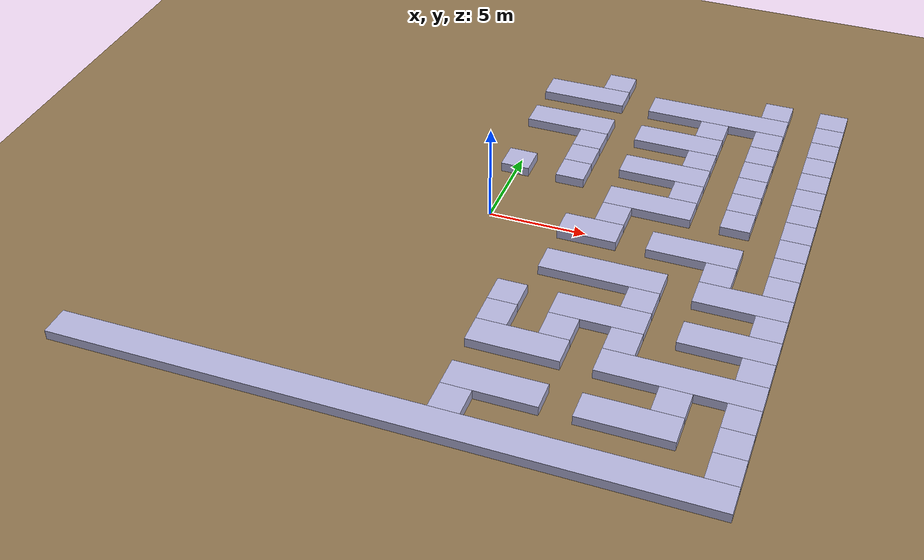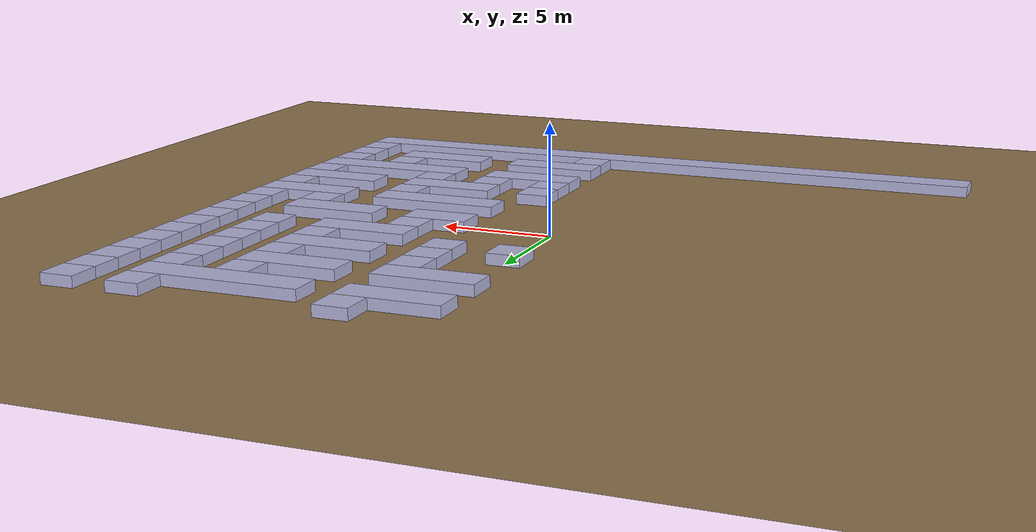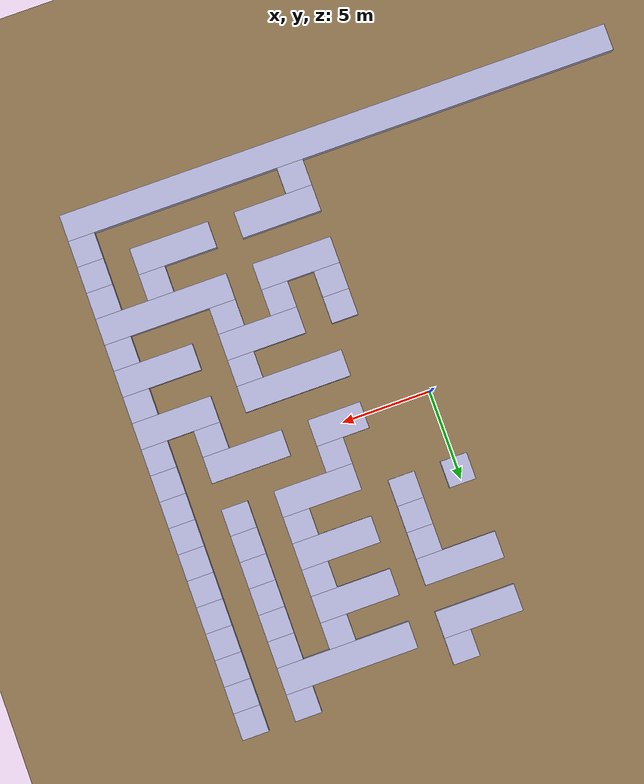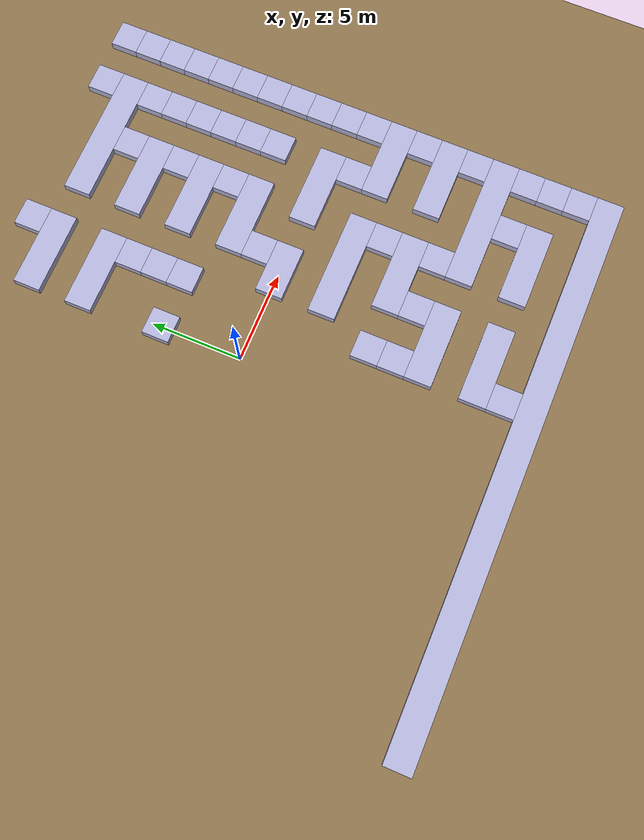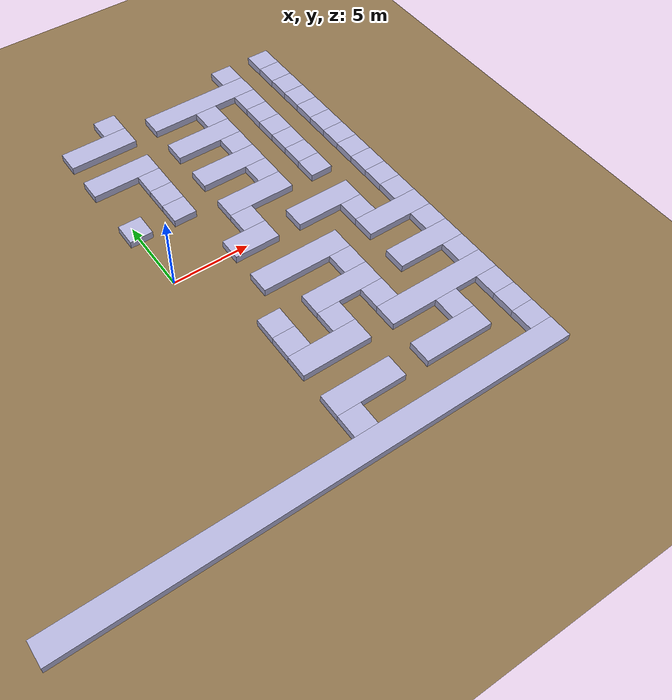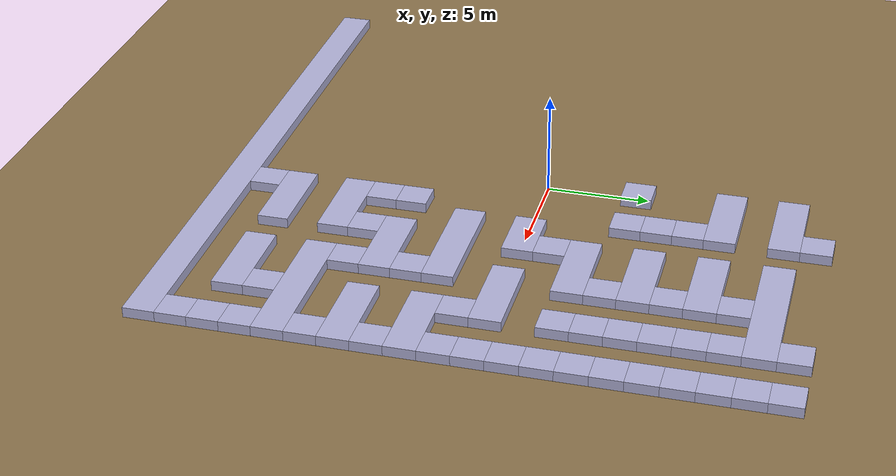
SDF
<sdf version="1.9">
 <world name="maze_world">
  <model name="ground_plane">
   <static>true</static>
   <link name="link">
    <collision name="col">
     <geometry><plane><normal>0 0 1</normal><size>500 500</size></plane></geometry>
     <surface><friction><ode><mu>1.0</mu><mu2>1.0</mu2></ode></friction></surface>
    </collision>
    <visual name="vis">
     <geometry><plane><normal>0 0 1</normal><size>500 500</size></plane></geometry>
     <material><ambient>0.35 0.28 0.20 1</ambient><diffuse>0.55 0.45 0.30 1</diffuse></material>
    </visual>
   </link>
  </model>
  <model name="maze_walls">
   <static>true</static>
   <link name="w0005">
    <pose>3.00000 13.50000 0.25000 0 0 0</pose>
    <collision name="col">
     <geometry><box><size>1.50000 1.50000 0.50000</size></box></geometry>
     <surface><friction><ode><mu>1.0</mu><mu2>1.0</mu2></ode></friction></surface>
    </collision>
    <visual name="vis">
     <geometry><box><size>1.50000 1.50000 0.50000</size></box></geometry>
     <material>
      <ambient>0.45 0.45 0.55 1</ambient>
      <diffuse>0.70 0.70 0.85 1</diffuse>
      <specular>0.15 0.15 0.2 1</specular>
     </material>
    </visual>
   </link>
   <link name="w0006">
    <pose>12.00000 13.50000 0.25000 0 0 0</pose>
    <collision name="col">
     <geometry><box><size>1.50000 1.50000 0.50000</size></box></geometry>
     <surface><friction><ode><mu>1.0</mu><mu2>1.0</mu2></ode></friction></surface>
    </collision>
    <visual name="vis">
     <geometry><box><size>1.50000 1.50000 0.50000</size></box></geometry>
     <material>
      <ambient>0.45 0.45 0.55 1</ambient>
      <diffuse>0.70 0.70 0.85 1</diffuse>
      <specular>0.15 0.15 0.2 1</specular>
     </material>
    </visual>
   </link>
   <link name="w0007">
    <pose>15.00000 13.50000 0.25000 0 0 0</pose>
    <collision name="col">
     <geometry><box><size>1.50000 1.50000 0.50000</size></box></geometry>
     <surface><friction><ode><mu>1.0</mu><mu2>1.0</mu2></ode></friction></surface>
    </collision>
    <visual name="vis">
     <geometry><box><size>1.50000 1.50000 0.50000</size></box></geometry>
     <material>
      <ambient>0.45 0.45 0.55 1</ambient>
      <diffuse>0.70 0.70 0.85 1</diffuse>
      <specular>0.15 0.15 0.2 1</specular>
     </material>
    </visual>
   </link>
   <link name="w0012">
    <pose>1.50000 12.00000 0.25000 0 0 0</pose>
    <collision name="col">
     <geometry><box><size>4.50000 1.50000 0.50000</size></box></geometry>
     <surface><friction><ode><mu>1.0</mu><mu2>1.0</mu2></ode></friction></surface>
    </collision>
    <visual name="vis">
     <geometry><box><size>4.50000 1.50000 0.50000</size></box></geometry>
     <material>
      <ambient>0.45 0.45 0.55 1</ambient>
      <diffuse>0.70 0.70 0.85 1</diffuse>
      <specular>0.15 0.15 0.2 1</specular>
     </material>
    </visual>
   </link>
   <link name="w0013">
    <pose>9.00000 12.00000 0.25000 0 0 0</pose>
    <collision name="col">
     <geometry><box><size>7.50000 1.50000 0.50000</size></box></geometry>
     <surface><friction><ode><mu>1.0</mu><mu2>1.0</mu2></ode></friction></surface>
    </collision>
    <visual name="vis">
     <geometry><box><size>7.50000 1.50000 0.50000</size></box></geometry>
     <material>
      <ambient>0.45 0.45 0.55 1</ambient>
      <diffuse>0.70 0.70 0.85 1</diffuse>
      <specular>0.15 0.15 0.2 1</specular>
     </material>
    </visual>
   </link>
   <link name="w0014">
    <pose>15.00000 12.00000 0.25000 0 0 0</pose>
    <collision name="col">
     <geometry><box><size>1.50000 1.50000 0.50000</size></box></geometry>
     <surface><friction><ode><mu>1.0</mu><mu2>1.0</mu2></ode></friction></surface>
    </collision>
    <visual name="vis">
     <geometry><box><size>1.50000 1.50000 0.50000</size></box></geometry>
     <material>
      <ambient>0.45 0.45 0.55 1</ambient>
      <diffuse>0.70 0.70 0.85 1</diffuse>
      <specular>0.15 0.15 0.2 1</specular>
     </material>
    </visual>
   </link>
   <link name="w0020">
    <pose>9.00000 10.50000 0.25000 0 0 0</pose>
    <collision name="col">
     <geometry><box><size>1.50000 1.50000 0.50000</size></box></geometry>
     <surface><friction><ode><mu>1.0</mu><mu2>1.0</mu2></ode></friction></surface>
    </collision>
    <visual name="vis">
     <geometry><box><size>1.50000 1.50000 0.50000</size></box></geometry>
     <material>
      <ambient>0.45 0.45 0.55 1</ambient>
      <diffuse>0.70 0.70 0.85 1</diffuse>
      <specular>0.15 0.15 0.2 1</specular>
     </material>
    </visual>
   </link>
   <link name="w0021">
    <pose>12.00000 10.50000 0.25000 0 0 0</pose>
    <collision name="col">
     <geometry><box><size>1.50000 1.50000 0.50000</size></box></geometry>
     <surface><friction><ode><mu>1.0</mu><mu2>1.0</mu2></ode></friction></surface>
    </collision>
    <visual name="vis">
     <geometry><box><size>1.50000 1.50000 0.50000</size></box></geometry>
     <material>
      <ambient>0.45 0.45 0.55 1</ambient>
      <diffuse>0.70 0.70 0.85 1</diffuse>
      <specular>0.15 0.15 0.2 1</specular>
     </material>
    </visual>
   </link>
   <link name="w0022">
    <pose>15.00000 10.50000 0.25000 0 0 0</pose>
    <collision name="col">
     <geometry><box><size>1.50000 1.50000 0.50000</size></box></geometry>
     <surface><friction><ode><mu>1.0</mu><mu2>1.0</mu2></ode></friction></surface>
    </collision>
    <visual name="vis">
     <geometry><box><size>1.50000 1.50000 0.50000</size></box></geometry>
     <material>
      <ambient>0.45 0.45 0.55 1</ambient>
      <diffuse>0.70 0.70 0.85 1</diffuse>
      <specular>0.15 0.15 0.2 1</specular>
     </material>
    </visual>
   </link>
   <link name="w0027">
    <pose>1.50000 9.00000 0.25000 0 0 0</pose>
    <collision name="col">
     <geometry><box><size>4.50000 1.50000 0.50000</size></box></geometry>
     <surface><friction><ode><mu>1.0</mu><mu2>1.0</mu2></ode></friction></surface>
    </collision>
    <visual name="vis">
     <geometry><box><size>4.50000 1.50000 0.50000</size></box></geometry>
     <material>
      <ambient>0.45 0.45 0.55 1</ambient>
      <diffuse>0.70 0.70 0.85 1</diffuse>
      <specular>0.15 0.15 0.2 1</specular>
     </material>
    </visual>
   </link>
   <link name="w0028">
    <pose>7.50000 9.00000 0.25000 0 0 0</pose>
    <collision name="col">
     <geometry><box><size>4.50000 1.50000 0.50000</size></box></geometry>
     <surface><friction><ode><mu>1.0</mu><mu2>1.0</mu2></ode></friction></surface>
    </collision>
    <visual name="vis">
     <geometry><box><size>4.50000 1.50000 0.50000</size></box></geometry>
     <material>
      <ambient>0.45 0.45 0.55 1</ambient>
      <diffuse>0.70 0.70 0.85 1</diffuse>
      <specular>0.15 0.15 0.2 1</specular>
     </material>
    </visual>
   </link>
   <link name="w0029">
    <pose>12.00000 9.00000 0.25000 0 0 0</pose>
    <collision name="col">
     <geometry><box><size>1.50000 1.50000 0.50000</size></box></geometry>
     <surface><friction><ode><mu>1.0</mu><mu2>1.0</mu2></ode></friction></surface>
    </collision>
    <visual name="vis">
     <geometry><box><size>1.50000 1.50000 0.50000</size></box></geometry>
     <material>
      <ambient>0.45 0.45 0.55 1</ambient>
      <diffuse>0.70 0.70 0.85 1</diffuse>
      <specular>0.15 0.15 0.2 1</specular>
     </material>
    </visual>
   </link>
   <link name="w0030">
    <pose>15.00000 9.00000 0.25000 0 0 0</pose>
    <collision name="col">
     <geometry><box><size>1.50000 1.50000 0.50000</size></box></geometry>
     <surface><friction><ode><mu>1.0</mu><mu2>1.0</mu2></ode></friction></surface>
    </collision>
    <visual name="vis">
     <geometry><box><size>1.50000 1.50000 0.50000</size></box></geometry>
     <material>
      <ambient>0.45 0.45 0.55 1</ambient>
      <diffuse>0.70 0.70 0.85 1</diffuse>
      <specular>0.15 0.15 0.2 1</specular>
     </material>
    </visual>
   </link>
   <link name="w0033">
    <pose>3.00000 7.50000 0.25000 0 0 0</pose>
    <collision name="col">
     <geometry><box><size>1.50000 1.50000 0.50000</size></box></geometry>
     <surface><friction><ode><mu>1.0</mu><mu2>1.0</mu2></ode></friction></surface>
    </collision>
    <visual name="vis">
     <geometry><box><size>1.50000 1.50000 0.50000</size></box></geometry>
     <material>
      <ambient>0.45 0.45 0.55 1</ambient>
      <diffuse>0.70 0.70 0.85 1</diffuse>
      <specular>0.15 0.15 0.2 1</specular>
     </material>
    </visual>
   </link>
   <link name="w0034">
    <pose>9.00000 7.50000 0.25000 0 0 0</pose>
    <collision name="col">
     <geometry><box><size>1.50000 1.50000 0.50000</size></box></geometry>
     <surface><friction><ode><mu>1.0</mu><mu2>1.0</mu2></ode></friction></surface>
    </collision>
    <visual name="vis">
     <geometry><box><size>1.50000 1.50000 0.50000</size></box></geometry>
     <material>
      <ambient>0.45 0.45 0.55 1</ambient>
      <diffuse>0.70 0.70 0.85 1</diffuse>
      <specular>0.15 0.15 0.2 1</specular>
     </material>
    </visual>
   </link>
   <link name="w0035">
    <pose>12.00000 7.50000 0.25000 0 0 0</pose>
    <collision name="col">
     <geometry><box><size>1.50000 1.50000 0.50000</size></box></geometry>
     <surface><friction><ode><mu>1.0</mu><mu2>1.0</mu2></ode></friction></surface>
    </collision>
    <visual name="vis">
     <geometry><box><size>1.50000 1.50000 0.50000</size></box></geometry>
     <material>
      <ambient>0.45 0.45 0.55 1</ambient>
      <diffuse>0.70 0.70 0.85 1</diffuse>
      <specular>0.15 0.15 0.2 1</specular>
     </material>
    </visual>
   </link>
   <link name="w0036">
    <pose>15.00000 7.50000 0.25000 0 0 0</pose>
    <collision name="col">
     <geometry><box><size>1.50000 1.50000 0.50000</size></box></geometry>
     <surface><friction><ode><mu>1.0</mu><mu2>1.0</mu2></ode></friction></surface>
    </collision>
    <visual name="vis">
     <geometry><box><size>1.50000 1.50000 0.50000</size></box></geometry>
     <material>
      <ambient>0.45 0.45 0.55 1</ambient>
      <diffuse>0.70 0.70 0.85 1</diffuse>
      <specular>0.15 0.15 0.2 1</specular>
     </material>
    </visual>
   </link>
   <link name="w0039">
    <pose>3.00000 6.00000 0.25000 0 0 0</pose>
    <collision name="col">
     <geometry><box><size>1.50000 1.50000 0.50000</size></box></geometry>
     <surface><friction><ode><mu>1.0</mu><mu2>1.0</mu2></ode></friction></surface>
    </collision>
    <visual name="vis">
     <geometry><box><size>1.50000 1.50000 0.50000</size></box></geometry>
     <material>
      <ambient>0.45 0.45 0.55 1</ambient>
      <diffuse>0.70 0.70 0.85 1</diffuse>
      <specular>0.15 0.15 0.2 1</specular>
     </material>
    </visual>
   </link>
   <link name="w0040">
    <pose>7.50000 6.00000 0.25000 0 0 0</pose>
    <collision name="col">
     <geometry><box><size>4.50000 1.50000 0.50000</size></box></geometry>
     <surface><friction><ode><mu>1.0</mu><mu2>1.0</mu2></ode></friction></surface>
    </collision>
    <visual name="vis">
     <geometry><box><size>4.50000 1.50000 0.50000</size></box></geometry>
     <material>
      <ambient>0.45 0.45 0.55 1</ambient>
      <diffuse>0.70 0.70 0.85 1</diffuse>
      <specular>0.15 0.15 0.2 1</specular>
     </material>
    </visual>
   </link>
   <link name="w0041">
    <pose>12.00000 6.00000 0.25000 0 0 0</pose>
    <collision name="col">
     <geometry><box><size>1.50000 1.50000 0.50000</size></box></geometry>
     <surface><friction><ode><mu>1.0</mu><mu2>1.0</mu2></ode></friction></surface>
    </collision>
    <visual name="vis">
     <geometry><box><size>1.50000 1.50000 0.50000</size></box></geometry>
     <material>
      <ambient>0.45 0.45 0.55 1</ambient>
      <diffuse>0.70 0.70 0.85 1</diffuse>
      <specular>0.15 0.15 0.2 1</specular>
     </material>
    </visual>
   </link>
   <link name="w0042">
    <pose>15.00000 6.00000 0.25000 0 0 0</pose>
    <collision name="col">
     <geometry><box><size>1.50000 1.50000 0.50000</size></box></geometry>
     <surface><friction><ode><mu>1.0</mu><mu2>1.0</mu2></ode></friction></surface>
    </collision>
    <visual name="vis">
     <geometry><box><size>1.50000 1.50000 0.50000</size></box></geometry>
     <material>
      <ambient>0.45 0.45 0.55 1</ambient>
      <diffuse>0.70 0.70 0.85 1</diffuse>
      <specular>0.15 0.15 0.2 1</specular>
     </material>
    </visual>
   </link>
   <link name="w0045">
    <pose>0.00000 4.50000 0.25000 0 0 0</pose>
    <collision name="col">
     <geometry><box><size>1.50000 1.50000 0.50000</size></box></geometry>
     <surface><friction><ode><mu>1.0</mu><mu2>1.0</mu2></ode></friction></surface>
    </collision>
    <visual name="vis">
     <geometry><box><size>1.50000 1.50000 0.50000</size></box></geometry>
     <material>
      <ambient>0.45 0.45 0.55 1</ambient>
      <diffuse>0.70 0.70 0.85 1</diffuse>
      <specular>0.15 0.15 0.2 1</specular>
     </material>
    </visual>
   </link>
   <link name="w0046">
    <pose>3.00000 4.50000 0.25000 0 0 0</pose>
    <collision name="col">
     <geometry><box><size>1.50000 1.50000 0.50000</size></box></geometry>
     <surface><friction><ode><mu>1.0</mu><mu2>1.0</mu2></ode></friction></surface>
    </collision>
    <visual name="vis">
     <geometry><box><size>1.50000 1.50000 0.50000</size></box></geometry>
     <material>
      <ambient>0.45 0.45 0.55 1</ambient>
      <diffuse>0.70 0.70 0.85 1</diffuse>
      <specular>0.15 0.15 0.2 1</specular>
     </material>
    </visual>
   </link>
   <link name="w0047">
    <pose>9.00000 4.50000 0.25000 0 0 0</pose>
    <collision name="col">
     <geometry><box><size>1.50000 1.50000 0.50000</size></box></geometry>
     <surface><friction><ode><mu>1.0</mu><mu2>1.0</mu2></ode></friction></surface>
    </collision>
    <visual name="vis">
     <geometry><box><size>1.50000 1.50000 0.50000</size></box></geometry>
     <material>
      <ambient>0.45 0.45 0.55 1</ambient>
      <diffuse>0.70 0.70 0.85 1</diffuse>
      <specular>0.15 0.15 0.2 1</specular>
     </material>
    </visual>
   </link>
   <link name="w0048">
    <pose>12.00000 4.50000 0.25000 0 0 0</pose>
    <collision name="col">
     <geometry><box><size>1.50000 1.50000 0.50000</size></box></geometry>
     <surface><friction><ode><mu>1.0</mu><mu2>1.0</mu2></ode></friction></surface>
    </collision>
    <visual name="vis">
     <geometry><box><size>1.50000 1.50000 0.50000</size></box></geometry>
     <material>
      <ambient>0.45 0.45 0.55 1</ambient>
      <diffuse>0.70 0.70 0.85 1</diffuse>
      <specular>0.15 0.15 0.2 1</specular>
     </material>
    </visual>
   </link>
   <link name="w0049">
    <pose>15.00000 4.50000 0.25000 0 0 0</pose>
    <collision name="col">
     <geometry><box><size>1.50000 1.50000 0.50000</size></box></geometry>
     <surface><friction><ode><mu>1.0</mu><mu2>1.0</mu2></ode></friction></surface>
    </collision>
    <visual name="vis">
     <geometry><box><size>1.50000 1.50000 0.50000</size></box></geometry>
     <material>
      <ambient>0.45 0.45 0.55 1</ambient>
      <diffuse>0.70 0.70 0.85 1</diffuse>
      <specular>0.15 0.15 0.2 1</specular>
     </material>
    </visual>
   </link>
   <link name="w0052">
    <pose>7.50000 3.00000 0.25000 0 0 0</pose>
    <collision name="col">
     <geometry><box><size>4.50000 1.50000 0.50000</size></box></geometry>
     <surface><friction><ode><mu>1.0</mu><mu2>1.0</mu2></ode></friction></surface>
    </collision>
    <visual name="vis">
     <geometry><box><size>4.50000 1.50000 0.50000</size></box></geometry>
     <material>
      <ambient>0.45 0.45 0.55 1</ambient>
      <diffuse>0.70 0.70 0.85 1</diffuse>
      <specular>0.15 0.15 0.2 1</specular>
     </material>
    </visual>
   </link>
   <link name="w0053">
    <pose>12.00000 3.00000 0.25000 0 0 0</pose>
    <collision name="col">
     <geometry><box><size>1.50000 1.50000 0.50000</size></box></geometry>
     <surface><friction><ode><mu>1.0</mu><mu2>1.0</mu2></ode></friction></surface>
    </collision>
    <visual name="vis">
     <geometry><box><size>1.50000 1.50000 0.50000</size></box></geometry>
     <material>
      <ambient>0.45 0.45 0.55 1</ambient>
      <diffuse>0.70 0.70 0.85 1</diffuse>
      <specular>0.15 0.15 0.2 1</specular>
     </material>
    </visual>
   </link>
   <link name="w0054">
    <pose>15.00000 3.00000 0.25000 0 0 0</pose>
    <collision name="col">
     <geometry><box><size>1.50000 1.50000 0.50000</size></box></geometry>
     <surface><friction><ode><mu>1.0</mu><mu2>1.0</mu2></ode></friction></surface>
    </collision>
    <visual name="vis">
     <geometry><box><size>1.50000 1.50000 0.50000</size></box></geometry>
     <material>
      <ambient>0.45 0.45 0.55 1</ambient>
      <diffuse>0.70 0.70 0.85 1</diffuse>
      <specular>0.15 0.15 0.2 1</specular>
     </material>
    </visual>
   </link>
   <link name="w0056">
    <pose>6.00000 1.50000 0.25000 0 0 0</pose>
    <collision name="col">
     <geometry><box><size>1.50000 1.50000 0.50000</size></box></geometry>
     <surface><friction><ode><mu>1.0</mu><mu2>1.0</mu2></ode></friction></surface>
    </collision>
    <visual name="vis">
     <geometry><box><size>1.50000 1.50000 0.50000</size></box></geometry>
     <material>
      <ambient>0.45 0.45 0.55 1</ambient>
      <diffuse>0.70 0.70 0.85 1</diffuse>
      <specular>0.15 0.15 0.2 1</specular>
     </material>
    </visual>
   </link>
   <link name="w0057">
    <pose>15.00000 1.50000 0.25000 0 0 0</pose>
    <collision name="col">
     <geometry><box><size>1.50000 1.50000 0.50000</size></box></geometry>
     <surface><friction><ode><mu>1.0</mu><mu2>1.0</mu2></ode></friction></surface>
    </collision>
    <visual name="vis">
     <geometry><box><size>1.50000 1.50000 0.50000</size></box></geometry>
     <material>
      <ambient>0.45 0.45 0.55 1</ambient>
      <diffuse>0.70 0.70 0.85 1</diffuse>
      <specular>0.15 0.15 0.2 1</specular>
     </material>
    </visual>
   </link>
   <link name="w0060">
    <pose>5.25000 0.00000 0.25000 0 0 0</pose>
    <collision name="col">
     <geometry><box><size>3.00000 1.50000 0.50000</size></box></geometry>
     <surface><friction><ode><mu>1.0</mu><mu2>1.0</mu2></ode></friction></surface>
    </collision>
    <visual name="vis">
     <geometry><box><size>3.00000 1.50000 0.50000</size></box></geometry>
     <material>
      <ambient>0.45 0.45 0.55 1</ambient>
      <diffuse>0.70 0.70 0.85 1</diffuse>
      <specular>0.15 0.15 0.2 1</specular>
     </material>
    </visual>
   </link>
   <link name="w0061">
    <pose>10.50000 0.00000 0.25000 0 0 0</pose>
    <collision name="col">
     <geometry><box><size>4.50000 1.50000 0.50000</size></box></geometry>
     <surface><friction><ode><mu>1.0</mu><mu2>1.0</mu2></ode></friction></surface>
    </collision>
    <visual name="vis">
     <geometry><box><size>4.50000 1.50000 0.50000</size></box></geometry>
     <material>
      <ambient>0.45 0.45 0.55 1</ambient>
      <diffuse>0.70 0.70 0.85 1</diffuse>
      <specular>0.15 0.15 0.2 1</specular>
     </material>
    </visual>
   </link>
   <link name="w0062">
    <pose>15.00000 0.00000 0.25000 0 0 0</pose>
    <collision name="col">
     <geometry><box><size>1.50000 1.50000 0.50000</size></box></geometry>
     <surface><friction><ode><mu>1.0</mu><mu2>1.0</mu2></ode></friction></surface>
    </collision>
    <visual name="vis">
     <geometry><box><size>1.50000 1.50000 0.50000</size></box></geometry>
     <material>
      <ambient>0.45 0.45 0.55 1</ambient>
      <diffuse>0.70 0.70 0.85 1</diffuse>
      <specular>0.15 0.15 0.2 1</specular>
     </material>
    </visual>
   </link>
   <link name="w0066">
    <pose>12.00000 -1.50000 0.25000 0 0 0</pose>
    <collision name="col">
     <geometry><box><size>1.50000 1.50000 0.50000</size></box></geometry>
     <surface><friction><ode><mu>1.0</mu><mu2>1.0</mu2></ode></friction></surface>
    </collision>
    <visual name="vis">
     <geometry><box><size>1.50000 1.50000 0.50000</size></box></geometry>
     <material>
      <ambient>0.45 0.45 0.55 1</ambient>
      <diffuse>0.70 0.70 0.85 1</diffuse>
      <specular>0.15 0.15 0.2 1</specular>
     </material>
    </visual>
   </link>
   <link name="w0067">
    <pose>15.00000 -1.50000 0.25000 0 0 0</pose>
    <collision name="col">
     <geometry><box><size>1.50000 1.50000 0.50000</size></box></geometry>
     <surface><friction><ode><mu>1.0</mu><mu2>1.0</mu2></ode></friction></surface>
    </collision>
    <visual name="vis">
     <geometry><box><size>1.50000 1.50000 0.50000</size></box></geometry>
     <material>
      <ambient>0.45 0.45 0.55 1</ambient>
      <diffuse>0.70 0.70 0.85 1</diffuse>
      <specular>0.15 0.15 0.2 1</specular>
     </material>
    </visual>
   </link>
   <link name="w0070">
    <pose>6.75000 -3.00000 0.25000 0 0 0</pose>
    <collision name="col">
     <geometry><box><size>6.00000 1.50000 0.50000</size></box></geometry>
     <surface><friction><ode><mu>1.0</mu><mu2>1.0</mu2></ode></friction></surface>
    </collision>
    <visual name="vis">
     <geometry><box><size>6.00000 1.50000 0.50000</size></box></geometry>
     <material>
      <ambient>0.45 0.45 0.55 1</ambient>
      <diffuse>0.70 0.70 0.85 1</diffuse>
      <specular>0.15 0.15 0.2 1</specular>
     </material>
    </visual>
   </link>
   <link name="w0071">
    <pose>13.50000 -3.00000 0.25000 0 0 0</pose>
    <collision name="col">
     <geometry><box><size>4.50000 1.50000 0.50000</size></box></geometry>
     <surface><friction><ode><mu>1.0</mu><mu2>1.0</mu2></ode></friction></surface>
    </collision>
    <visual name="vis">
     <geometry><box><size>4.50000 1.50000 0.50000</size></box></geometry>
     <material>
      <ambient>0.45 0.45 0.55 1</ambient>
      <diffuse>0.70 0.70 0.85 1</diffuse>
      <specular>0.15 0.15 0.2 1</specular>
     </material>
    </visual>
   </link>
   <link name="w0073">
    <pose>9.00000 -4.50000 0.25000 0 0 0</pose>
    <collision name="col">
     <geometry><box><size>1.50000 1.50000 0.50000</size></box></geometry>
     <surface><friction><ode><mu>1.0</mu><mu2>1.0</mu2></ode></friction></surface>
    </collision>
    <visual name="vis">
     <geometry><box><size>1.50000 1.50000 0.50000</size></box></geometry>
     <material>
      <ambient>0.45 0.45 0.55 1</ambient>
      <diffuse>0.70 0.70 0.85 1</diffuse>
      <specular>0.15 0.15 0.2 1</specular>
     </material>
    </visual>
   </link>
   <link name="w0074">
    <pose>15.00000 -4.50000 0.25000 0 0 0</pose>
    <collision name="col">
     <geometry><box><size>1.50000 1.50000 0.50000</size></box></geometry>
     <surface><friction><ode><mu>1.0</mu><mu2>1.0</mu2></ode></friction></surface>
    </collision>
    <visual name="vis">
     <geometry><box><size>1.50000 1.50000 0.50000</size></box></geometry>
     <material>
      <ambient>0.45 0.45 0.55 1</ambient>
      <diffuse>0.70 0.70 0.85 1</diffuse>
      <specular>0.15 0.15 0.2 1</specular>
     </material>
    </visual>
   </link>
   <link name="w0079">
    <pose>3.00000 -6.00000 0.25000 0 0 0</pose>
    <collision name="col">
     <geometry><box><size>1.50000 1.50000 0.50000</size></box></geometry>
     <surface><friction><ode><mu>1.0</mu><mu2>1.0</mu2></ode></friction></surface>
    </collision>
    <visual name="vis">
     <geometry><box><size>1.50000 1.50000 0.50000</size></box></geometry>
     <material>
      <ambient>0.45 0.45 0.55 1</ambient>
      <diffuse>0.70 0.70 0.85 1</diffuse>
      <specular>0.15 0.15 0.2 1</specular>
     </material>
    </visual>
   </link>
   <link name="w0080">
    <pose>7.50000 -6.00000 0.25000 0 0 0</pose>
    <collision name="col">
     <geometry><box><size>4.50000 1.50000 0.50000</size></box></geometry>
     <surface><friction><ode><mu>1.0</mu><mu2>1.0</mu2></ode></friction></surface>
    </collision>
    <visual name="vis">
     <geometry><box><size>4.50000 1.50000 0.50000</size></box></geometry>
     <material>
      <ambient>0.45 0.45 0.55 1</ambient>
      <diffuse>0.70 0.70 0.85 1</diffuse>
      <specular>0.15 0.15 0.2 1</specular>
     </material>
    </visual>
   </link>
   <link name="w0081">
    <pose>13.50000 -6.00000 0.25000 0 0 0</pose>
    <collision name="col">
     <geometry><box><size>4.50000 1.50000 0.50000</size></box></geometry>
     <surface><friction><ode><mu>1.0</mu><mu2>1.0</mu2></ode></friction></surface>
    </collision>
    <visual name="vis">
     <geometry><box><size>4.50000 1.50000 0.50000</size></box></geometry>
     <material>
      <ambient>0.45 0.45 0.55 1</ambient>
      <diffuse>0.70 0.70 0.85 1</diffuse>
      <specular>0.15 0.15 0.2 1</specular>
     </material>
    </visual>
   </link>
   <link name="w0086">
    <pose>3.00000 -7.50000 0.25000 0 0 0</pose>
    <collision name="col">
     <geometry><box><size>1.50000 1.50000 0.50000</size></box></geometry>
     <surface><friction><ode><mu>1.0</mu><mu2>1.0</mu2></ode></friction></surface>
    </collision>
    <visual name="vis">
     <geometry><box><size>1.50000 1.50000 0.50000</size></box></geometry>
     <material>
      <ambient>0.45 0.45 0.55 1</ambient>
      <diffuse>0.70 0.70 0.85 1</diffuse>
      <specular>0.15 0.15 0.2 1</specular>
     </material>
    </visual>
   </link>
   <link name="w0087">
    <pose>6.00000 -7.50000 0.25000 0 0 0</pose>
    <collision name="col">
     <geometry><box><size>1.50000 1.50000 0.50000</size></box></geometry>
     <surface><friction><ode><mu>1.0</mu><mu2>1.0</mu2></ode></friction></surface>
    </collision>
    <visual name="vis">
     <geometry><box><size>1.50000 1.50000 0.50000</size></box></geometry>
     <material>
      <ambient>0.45 0.45 0.55 1</ambient>
      <diffuse>0.70 0.70 0.85 1</diffuse>
      <specular>0.15 0.15 0.2 1</specular>
     </material>
    </visual>
   </link>
   <link name="w0088">
    <pose>9.00000 -7.50000 0.25000 0 0 0</pose>
    <collision name="col">
     <geometry><box><size>1.50000 1.50000 0.50000</size></box></geometry>
     <surface><friction><ode><mu>1.0</mu><mu2>1.0</mu2></ode></friction></surface>
    </collision>
    <visual name="vis">
     <geometry><box><size>1.50000 1.50000 0.50000</size></box></geometry>
     <material>
      <ambient>0.45 0.45 0.55 1</ambient>
      <diffuse>0.70 0.70 0.85 1</diffuse>
      <specular>0.15 0.15 0.2 1</specular>
     </material>
    </visual>
   </link>
   <link name="w0089">
    <pose>15.00000 -7.50000 0.25000 0 0 0</pose>
    <collision name="col">
     <geometry><box><size>1.50000 1.50000 0.50000</size></box></geometry>
     <surface><friction><ode><mu>1.0</mu><mu2>1.0</mu2></ode></friction></surface>
    </collision>
    <visual name="vis">
     <geometry><box><size>1.50000 1.50000 0.50000</size></box></geometry>
     <material>
      <ambient>0.45 0.45 0.55 1</ambient>
      <diffuse>0.70 0.70 0.85 1</diffuse>
      <specular>0.15 0.15 0.2 1</specular>
     </material>
    </visual>
   </link>
   <link name="w0093">
    <pose>4.50000 -9.00000 0.25000 0 0 0</pose>
    <collision name="col">
     <geometry><box><size>4.50000 1.50000 0.50000</size></box></geometry>
     <surface><friction><ode><mu>1.0</mu><mu2>1.0</mu2></ode></friction></surface>
    </collision>
    <visual name="vis">
     <geometry><box><size>4.50000 1.50000 0.50000</size></box></geometry>
     <material>
      <ambient>0.45 0.45 0.55 1</ambient>
      <diffuse>0.70 0.70 0.85 1</diffuse>
      <specular>0.15 0.15 0.2 1</specular>
     </material>
    </visual>
   </link>
   <link name="w0094">
    <pose>12.00000 -9.00000 0.25000 0 0 0</pose>
    <collision name="col">
     <geometry><box><size>7.50000 1.50000 0.50000</size></box></geometry>
     <surface><friction><ode><mu>1.0</mu><mu2>1.0</mu2></ode></friction></surface>
    </collision>
    <visual name="vis">
     <geometry><box><size>7.50000 1.50000 0.50000</size></box></geometry>
     <material>
      <ambient>0.45 0.45 0.55 1</ambient>
      <diffuse>0.70 0.70 0.85 1</diffuse>
      <specular>0.15 0.15 0.2 1</specular>
     </material>
    </visual>
   </link>
   <link name="w0098">
    <pose>12.00000 -10.50000 0.25000 0 0 0</pose>
    <collision name="col">
     <geometry><box><size>1.50000 1.50000 0.50000</size></box></geometry>
     <surface><friction><ode><mu>1.0</mu><mu2>1.0</mu2></ode></friction></surface>
    </collision>
    <visual name="vis">
     <geometry><box><size>1.50000 1.50000 0.50000</size></box></geometry>
     <material>
      <ambient>0.45 0.45 0.55 1</ambient>
      <diffuse>0.70 0.70 0.85 1</diffuse>
      <specular>0.15 0.15 0.2 1</specular>
     </material>
    </visual>
   </link>
   <link name="w0099">
    <pose>15.00000 -10.50000 0.25000 0 0 0</pose>
    <collision name="col">
     <geometry><box><size>1.50000 1.50000 0.50000</size></box></geometry>
     <surface><friction><ode><mu>1.0</mu><mu2>1.0</mu2></ode></friction></surface>
    </collision>
    <visual name="vis">
     <geometry><box><size>1.50000 1.50000 0.50000</size></box></geometry>
     <material>
      <ambient>0.45 0.45 0.55 1</ambient>
      <diffuse>0.70 0.70 0.85 1</diffuse>
      <specular>0.15 0.15 0.2 1</specular>
     </material>
    </visual>
   </link>
   <link name="w0104">
    <pose>4.50000 -12.00000 0.25000 0 0 0</pose>
    <collision name="col">
     <geometry><box><size>4.50000 1.50000 0.50000</size></box></geometry>
     <surface><friction><ode><mu>1.0</mu><mu2>1.0</mu2></ode></friction></surface>
    </collision>
    <visual name="vis">
     <geometry><box><size>4.50000 1.50000 0.50000</size></box></geometry>
     <material>
      <ambient>0.45 0.45 0.55 1</ambient>
      <diffuse>0.70 0.70 0.85 1</diffuse>
      <specular>0.15 0.15 0.2 1</specular>
     </material>
    </visual>
   </link>
   <link name="w0105">
    <pose>10.50000 -12.00000 0.25000 0 0 0</pose>
    <collision name="col">
     <geometry><box><size>4.50000 1.50000 0.50000</size></box></geometry>
     <surface><friction><ode><mu>1.0</mu><mu2>1.0</mu2></ode></friction></surface>
    </collision>
    <visual name="vis">
     <geometry><box><size>4.50000 1.50000 0.50000</size></box></geometry>
     <material>
      <ambient>0.45 0.45 0.55 1</ambient>
      <diffuse>0.70 0.70 0.85 1</diffuse>
      <specular>0.15 0.15 0.2 1</specular>
     </material>
    </visual>
   </link>
   <link name="w0106">
    <pose>15.00000 -12.00000 0.25000 0 0 0</pose>
    <collision name="col">
     <geometry><box><size>1.50000 1.50000 0.50000</size></box></geometry>
     <surface><friction><ode><mu>1.0</mu><mu2>1.0</mu2></ode></friction></surface>
    </collision>
    <visual name="vis">
     <geometry><box><size>1.50000 1.50000 0.50000</size></box></geometry>
     <material>
      <ambient>0.45 0.45 0.55 1</ambient>
      <diffuse>0.70 0.70 0.85 1</diffuse>
      <specular>0.15 0.15 0.2 1</specular>
     </material>
    </visual>
   </link>
   <link name="w0111">
    <pose>3.00000 -13.50000 0.25000 0 0 0</pose>
    <collision name="col">
     <geometry><box><size>1.50000 1.50000 0.50000</size></box></geometry>
     <surface><friction><ode><mu>1.0</mu><mu2>1.0</mu2></ode></friction></surface>
    </collision>
    <visual name="vis">
     <geometry><box><size>1.50000 1.50000 0.50000</size></box></geometry>
     <material>
      <ambient>0.45 0.45 0.55 1</ambient>
      <diffuse>0.70 0.70 0.85 1</diffuse>
      <specular>0.15 0.15 0.2 1</specular>
     </material>
    </visual>
   </link>
   <link name="w0112">
    <pose>15.00000 -13.50000 0.25000 0 0 0</pose>
    <collision name="col">
     <geometry><box><size>1.50000 1.50000 0.50000</size></box></geometry>
     <surface><friction><ode><mu>1.0</mu><mu2>1.0</mu2></ode></friction></surface>
    </collision>
    <visual name="vis">
     <geometry><box><size>1.50000 1.50000 0.50000</size></box></geometry>
     <material>
      <ambient>0.45 0.45 0.55 1</ambient>
      <diffuse>0.70 0.70 0.85 1</diffuse>
      <specular>0.15 0.15 0.2 1</specular>
     </material>
    </visual>
   </link>
   <link name="w0113">
    <pose>0.00000 -15.00000 0.25000 0 0 0</pose>
    <collision name="col">
     <geometry><box><size>31.50000 1.50000 0.50000</size></box></geometry>
     <surface><friction><ode><mu>1.0</mu><mu2>1.0</mu2></ode></friction></surface>
    </collision>
    <visual name="vis">
     <geometry><box><size>31.50000 1.50000 0.50000</size></box></geometry>
     <material>
      <ambient>0.45 0.45 0.55 1</ambient>
      <diffuse>0.70 0.70 0.85 1</diffuse>
      <specular>0.15 0.15 0.2 1</specular>
     </material>
    </visual>
   </link>
  </model>
 </world>
</sdf>
